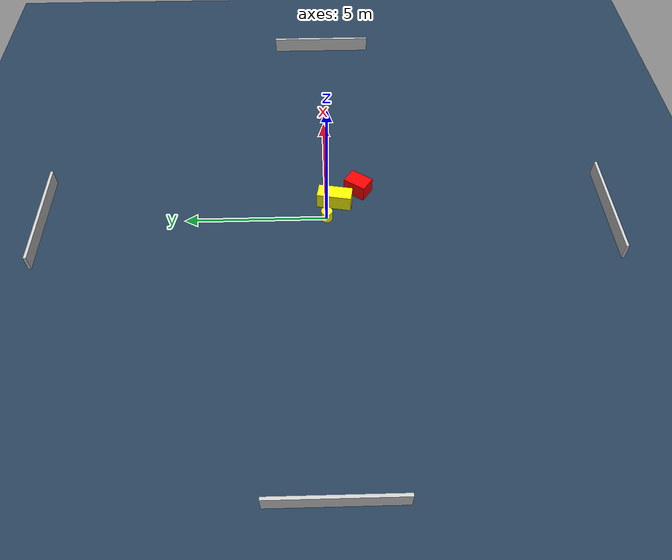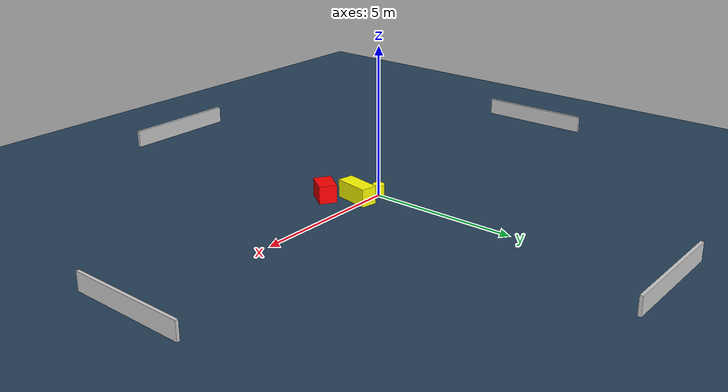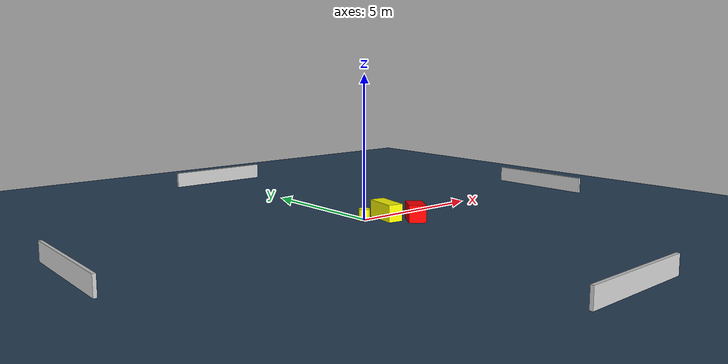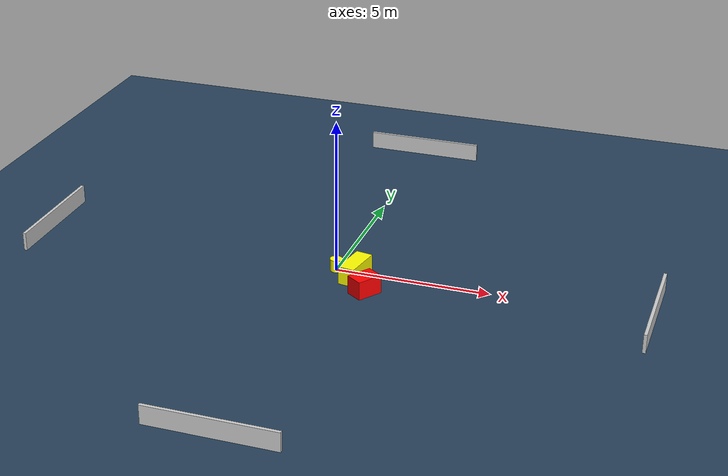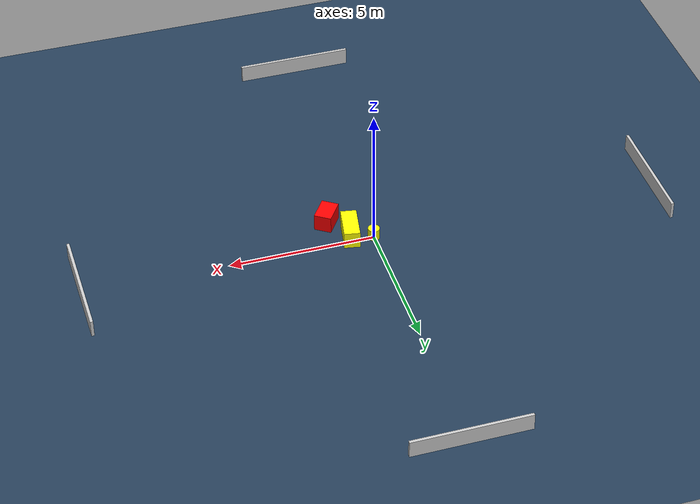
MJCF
<?xml version="1.0" ?>
<mujoco model="generated_environment">
  <option timestep="0.01" integrator="RK4" cone="elliptic"/>
  <default>
    <geom density="1"/>
  </default>
  <asset>
    <texture builtin="gradient" height="3072" name="skybox" rgb1="0.3 0.5 0.7" rgb2="0 0 0" type="skybox" width="512"/>
    <texture builtin="checker" height="300" name="groundplane" rgb1="0.2 0.3 0.4" rgb2="0.1 0.2 0.3" type="2d" width="300"/>
    <material name="groundplane" reflectance="0.2" texrepeat="5 5" texture="groundplane"/>
  </asset>
  <worldbody>
    <light dir="0 0 -1" directional="true" pos="0 0 1.5"/>
    <geom condim="3" friction="0.5 0.005 0.001" material="groundplane" name="floor" pos="0 0 0" size="0 0 0.05" type="plane"/>
    <body name="walls">
      <geom name="wall_1" condim="4" pos="-10.0 0.0 0.3" rgba="0.800000011920929 0.800000011920929 0.800000011920929 1.0" size="0.05 2.0 0.3" type="box"/>
      <geom name="wall_2" condim="4" pos="10.0 0.0 0.3" rgba="0.800000011920929 0.800000011920929 0.800000011920929 1.0" size="0.05 2.0 0.3" type="box"/>
      <geom name="wall_3" condim="4" pos="0.0 -10.0 0.3" rgba="0.800000011920929 0.800000011920929 0.800000011920929 1.0" size="2.0 0.05 0.3" type="box"/>
      <geom name="wall_4" condim="4" pos="0.0 10.0 0.3" rgba="0.800000011920929 0.800000011920929 0.800000011920929 1.0" size="2.0 0.05 0.3" type="box"/>
    </body>
    <body name="robot">
      <joint name="joint_x" type="slide" pos="0 0 0" axis="1 0 0"/>
      <joint name="joint_y" type="slide" pos="0 0 0" axis="0 1 0"/>
      <geom name="robot" type="cylinder" pos="0.0 0.0 0.2" size="0.2 0.2 0.0" mass="5.0" friction="1.0 0.005 0.0001" condim="4" rgba="1.0 1.0 0.0 1.0"/>
    </body>
    <body name="obstacle_1_movable">
      <geom name="obstacle_1_movable" condim="4" pos="0.7325971484162824 -0.30458049123558684 0.3" euler="0 0 79.7099950949016" friction="0.0 0.005 0.001" rgba="1.0 1.0 0.0 1.0" size="0.6103535722551229 0.2716053765566604 0.3" type="box" mass="0.1"/>
      <joint type="free"/>
    </body>
    <body name="obstacle_2_static">
      <geom name="obstacle_2_static" condim="4" pos="1.3166461451549596 -1.1690563905558935 0.3" euler="0 0 145.4609831531287" friction="0.0 0.005 0.001" rgba="1.0 0.0 0.0 1.0" size="0.29594572910074757 0.4212254441232897 0.3" type="box"/>
    </body>
  </worldbody>
  <actuator>
    <motor name="actuator_x" joint="joint_x" gear="1" ctrlrange="-1 1"/>
    <motor name="actuator_y" joint="joint_y" gear="1" ctrlrange="-1 1"/>
  </actuator>
</mujoco>
